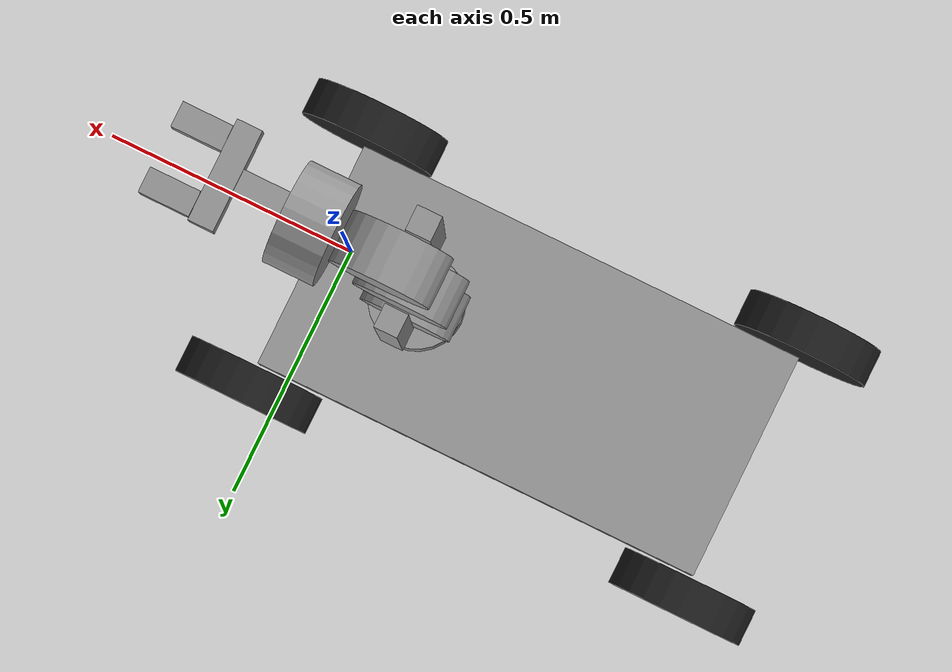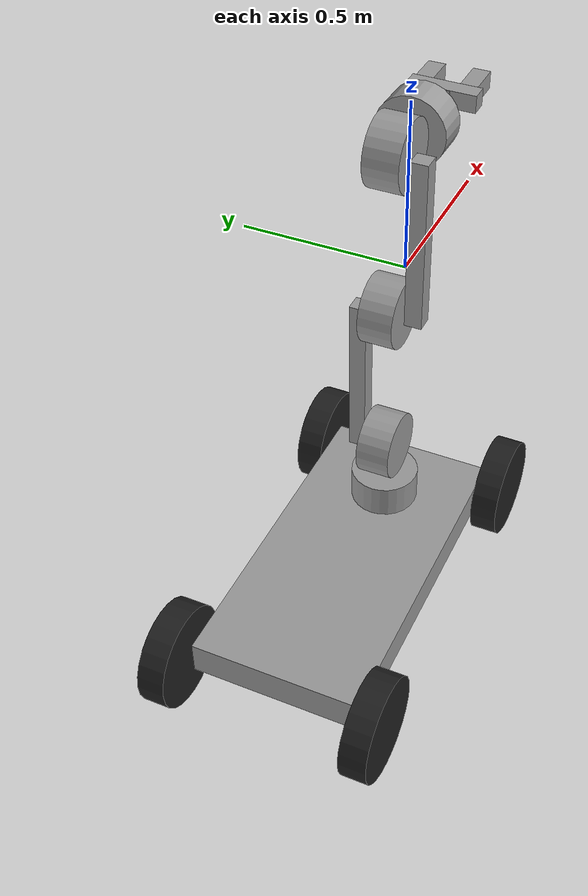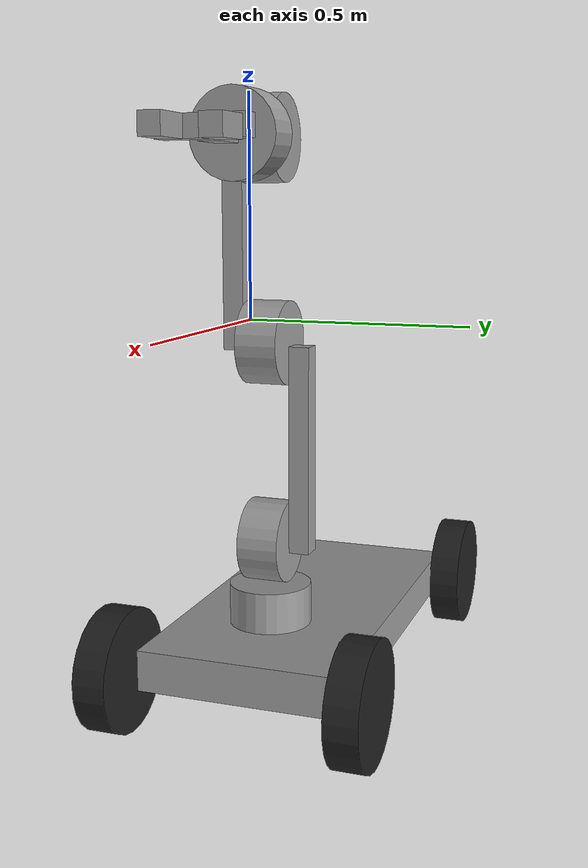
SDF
<?xml version='1.0'?>
<sdf version='1.7'>
  <model name='armOnCart'>
    <link name='link_0'>
      <inertial>
        <mass>1</mass>
        <inertia>
          <ixx>0.145833</ixx>
          <ixy>0</ixy>
          <ixz>0</ixz>
          <iyy>0.145833</iyy>
          <iyz>0</iyz>
          <izz>0.125</izz>
        </inertia>
        <pose>0 0 0 0 -0 0</pose>
      </inertial>
      <pose>-0.12157 -0.002688 -0.706599 0 -0 0</pose>
      <gravity>1</gravity>
      <self_collide>0</self_collide>
      <kinematic>0</kinematic>
      <enable_wind>0</enable_wind>
      <visual name='visual'>
        <pose>0 0 0 0 -0 0</pose>
        <geometry>
          <cylinder>
            <radius>0.1</radius>
            <length>0.1</length>
          </cylinder>
        </geometry>
        <material>
          <lighting>1</lighting>
          <script>
            <uri>file://media/materials/scripts/gazebo.material</uri>
            <name>Gazebo/Grey</name>
          </script>
          <shader type='pixel'>
            <normal_map>__default__</normal_map>
          </shader>
          <ambient>0.3 0.3 0.3 1</ambient>
          <diffuse>0.7 0.7 0.7 1</diffuse>
          <specular>0.01 0.01 0.01 1</specular>
          <emissive>0 0 0 1</emissive>
        </material>
        <transparency>0</transparency>
        <cast_shadows>1</cast_shadows>
      </visual>
      <collision name='collision'>
        <laser_retro>0</laser_retro>
        <max_contacts>10</max_contacts>
        <pose>0 0 0 0 -0 0</pose>
        <geometry>
          <cylinder>
            <radius>0.1</radius>
            <length>0.1</length>
          </cylinder>
        </geometry>
        <surface>
          <friction>
            <ode>
              <mu>1</mu>
              <mu2>1</mu2>
              <fdir1>0 0 0</fdir1>
              <slip1>0</slip1>
              <slip2>0</slip2>
            </ode>
            <torsional>
              <coefficient>1</coefficient>
              <patch_radius>0</patch_radius>
              <surface_radius>0</surface_radius>
              <use_patch_radius>1</use_patch_radius>
              <ode>
                <slip>0</slip>
              </ode>
            </torsional>
          </friction>
          <bounce>
            <restitution_coefficient>0</restitution_coefficient>
            <threshold>1e+06</threshold>
          </bounce>
          <contact>
            <collide_without_contact>0</collide_without_contact>
            <collide_without_contact_bitmask>1</collide_without_contact_bitmask>
            <collide_bitmask>1</collide_bitmask>
            <ode>
              <soft_cfm>0</soft_cfm>
              <soft_erp>0.2</soft_erp>
              <kp>1e+13</kp>
              <kd>1</kd>
              <max_vel>0.01</max_vel>
              <min_depth>0</min_depth>
            </ode>
            <bullet>
              <split_impulse>1</split_impulse>
              <split_impulse_penetration_threshold>-0.01</split_impulse_penetration_threshold>
              <soft_cfm>0</soft_cfm>
              <soft_erp>0.2</soft_erp>
              <kp>1e+13</kp>
              <kd>1</kd>
            </bullet>
          </contact>
        </surface>
      </collision>
    </link>
    <link name='link_10'>
      <inertial>
        <mass>1</mass>
        <inertia>
          <ixx>0.166667</ixx>
          <ixy>0</ixy>
          <ixz>0</ixz>
          <iyy>0.166667</iyy>
          <iyz>0</iyz>
          <izz>0.166667</izz>
        </inertia>
        <pose>0 0 0 0 -0 0</pose>
      </inertial>
      <pose>0.310485 0.066416 0.406986 0 -1.56253 0</pose>
      <gravity>1</gravity>
      <self_collide>0</self_collide>
      <kinematic>0</kinematic>
      <enable_wind>0</enable_wind>
      <visual name='visual'>
        <pose>0 0 0 0 -0 0</pose>
        <geometry>
          <box>
            <size>0.05 0.05 0.1</size>
          </box>
        </geometry>
        <material>
          <lighting>1</lighting>
          <script>
            <uri>file://media/materials/scripts/gazebo.material</uri>
            <name>Gazebo/Grey</name>
          </script>
          <shader type='pixel'>
            <normal_map>__default__</normal_map>
          </shader>
          <ambient>0.3 0.3 0.3 1</ambient>
          <diffuse>0.7 0.7 0.7 1</diffuse>
          <specular>0.01 0.01 0.01 1</specular>
          <emissive>0 0 0 1</emissive>
        </material>
        <transparency>0</transparency>
        <cast_shadows>1</cast_shadows>
      </visual>
      <collision name='collision'>
        <laser_retro>0</laser_retro>
        <max_contacts>10</max_contacts>
        <pose>0 0 0 0 -0 0</pose>
        <geometry>
          <box>
            <size>0.05 0.05 0.1</size>
          </box>
        </geometry>
        <surface>
          <friction>
            <ode>
              <mu>1</mu>
              <mu2>1</mu2>
              <fdir1>0 0 0</fdir1>
              <slip1>0</slip1>
              <slip2>0</slip2>
            </ode>
            <torsional>
              <coefficient>1</coefficient>
              <patch_radius>0</patch_radius>
              <surface_radius>0</surface_radius>
              <use_patch_radius>1</use_patch_radius>
              <ode>
                <slip>0</slip>
              </ode>
            </torsional>
          </friction>
          <bounce>
            <restitution_coefficient>0</restitution_coefficient>
            <threshold>1e+06</threshold>
          </bounce>
          <contact>
            <collide_without_contact>0</collide_without_contact>
            <collide_without_contact_bitmask>1</collide_without_contact_bitmask>
            <collide_bitmask>1</collide_bitmask>
            <ode>
              <soft_cfm>0</soft_cfm>
              <soft_erp>0.2</soft_erp>
              <kp>1e+13</kp>
              <kd>1</kd>
              <max_vel>0.01</max_vel>
              <min_depth>0</min_depth>
            </ode>
            <bullet>
              <split_impulse>1</split_impulse>
              <split_impulse_penetration_threshold>-0.01</split_impulse_penetration_threshold>
              <soft_cfm>0</soft_cfm>
              <soft_erp>0.2</soft_erp>
              <kp>1e+13</kp>
              <kd>1</kd>
            </bullet>
          </contact>
        </surface>
      </collision>
    </link>
    <link name='link_11'>
      <inertial>
        <mass>1</mass>
        <inertia>
          <ixx>0.166667</ixx>
          <ixy>0</ixy>
          <ixz>0</ixz>
          <iyy>0.166667</iyy>
          <iyz>0</iyz>
          <izz>0.166667</izz>
        </inertia>
        <pose>0 0 0 0 -0 0</pose>
      </inertial>
      <pose>0.309747 -0.063582 0.411085 0 1.56992 0</pose>
      <gravity>1</gravity>
      <self_collide>0</self_collide>
      <kinematic>0</kinematic>
      <enable_wind>0</enable_wind>
      <visual name='visual'>
        <pose>0 0 0 0 -0 0</pose>
        <geometry>
          <box>
            <size>0.05 0.05 0.1</size>
          </box>
        </geometry>
        <material>
          <lighting>1</lighting>
          <script>
            <uri>file://media/materials/scripts/gazebo.material</uri>
            <name>Gazebo/Grey</name>
          </script>
          <shader type='pixel'>
            <normal_map>__default__</normal_map>
          </shader>
          <ambient>0.3 0.3 0.3 1</ambient>
          <diffuse>0.7 0.7 0.7 1</diffuse>
          <specular>0.01 0.01 0.01 1</specular>
          <emissive>0 0 0 1</emissive>
        </material>
        <transparency>0</transparency>
        <cast_shadows>1</cast_shadows>
      </visual>
      <collision name='collision'>
        <laser_retro>0</laser_retro>
        <max_contacts>10</max_contacts>
        <pose>0 0 0 0 -0 0</pose>
        <geometry>
          <box>
            <size>0.05 0.05 0.1</size>
          </box>
        </geometry>
        <surface>
          <friction>
            <ode>
              <mu>1</mu>
              <mu2>1</mu2>
              <fdir1>0 0 0</fdir1>
              <slip1>0</slip1>
              <slip2>0</slip2>
            </ode>
            <torsional>
              <coefficient>1</coefficient>
              <patch_radius>0</patch_radius>
              <surface_radius>0</surface_radius>
              <use_patch_radius>1</use_patch_radius>
              <ode>
                <slip>0</slip>
              </ode>
            </torsional>
          </friction>
          <bounce>
            <restitution_coefficient>0</restitution_coefficient>
            <threshold>1e+06</threshold>
          </bounce>
          <contact>
            <collide_without_contact>0</collide_without_contact>
            <collide_without_contact_bitmask>1</collide_without_contact_bitmask>
            <collide_bitmask>1</collide_bitmask>
            <ode>
              <soft_cfm>0</soft_cfm>
              <soft_erp>0.2</soft_erp>
              <kp>1e+13</kp>
              <kd>1</kd>
              <max_vel>0.01</max_vel>
              <min_depth>0</min_depth>
            </ode>
            <bullet>
              <split_impulse>1</split_impulse>
              <split_impulse_penetration_threshold>-0.01</split_impulse_penetration_threshold>
              <soft_cfm>0</soft_cfm>
              <soft_erp>0.2</soft_erp>
              <kp>1e+13</kp>
              <kd>1</kd>
            </bullet>
          </contact>
        </surface>
      </collision>
    </link>
    <link name='link_2'>
      <inertial>
        <mass>1</mass>
        <inertia>
          <ixx>0.145833</ixx>
          <ixy>0</ixy>
          <ixz>0</ixz>
          <iyy>0.145833</iyy>
          <iyz>0</iyz>
          <izz>0.125</izz>
        </inertia>
        <pose>0 0 0 0 -0 0</pose>
      </inertial>
      <pose>-0.122164 -0.000569 -0.548263 -1.57465 0 0</pose>
      <gravity>1</gravity>
      <self_collide>0</self_collide>
      <kinematic>0</kinematic>
      <enable_wind>0</enable_wind>
      <visual name='visual'>
        <pose>0 0 0 0 -0 0</pose>
        <geometry>
          <cylinder>
            <radius>0.1</radius>
            <length>0.1</length>
          </cylinder>
        </geometry>
        <material>
          <lighting>1</lighting>
          <script>
            <uri>file://media/materials/scripts/gazebo.material</uri>
            <name>Gazebo/Grey</name>
          </script>
          <shader type='pixel'>
            <normal_map>__default__</normal_map>
          </shader>
          <ambient>0.3 0.3 0.3 1</ambient>
          <diffuse>0.7 0.7 0.7 1</diffuse>
          <specular>0.01 0.01 0.01 1</specular>
          <emissive>0 0 0 1</emissive>
        </material>
        <transparency>0</transparency>
        <cast_shadows>1</cast_shadows>
      </visual>
      <collision name='collision'>
        <laser_retro>0</laser_retro>
        <max_contacts>10</max_contacts>
        <pose>0 0 0 0 -0 0</pose>
        <geometry>
          <cylinder>
            <radius>0.1</radius>
            <length>0.1</length>
          </cylinder>
        </geometry>
        <surface>
          <friction>
            <ode>
              <mu>1</mu>
              <mu2>1</mu2>
              <fdir1>0 0 0</fdir1>
              <slip1>0</slip1>
              <slip2>0</slip2>
            </ode>
            <torsional>
              <coefficient>1</coefficient>
              <patch_radius>0</patch_radius>
              <surface_radius>0</surface_radius>
              <use_patch_radius>1</use_patch_radius>
              <ode>
                <slip>0</slip>
              </ode>
            </torsional>
          </friction>
          <bounce>
            <restitution_coefficient>0</restitution_coefficient>
            <threshold>1e+06</threshold>
          </bounce>
          <contact>
            <collide_without_contact>0</collide_without_contact>
            <collide_without_contact_bitmask>1</collide_without_contact_bitmask>
            <collide_bitmask>1</collide_bitmask>
            <ode>
              <soft_cfm>0</soft_cfm>
              <soft_erp>0.2</soft_erp>
              <kp>1e+13</kp>
              <kd>1</kd>
              <max_vel>0.01</max_vel>
              <min_depth>0</min_depth>
            </ode>
            <bullet>
              <split_impulse>1</split_impulse>
              <split_impulse_penetration_threshold>-0.01</split_impulse_penetration_threshold>
              <soft_cfm>0</soft_cfm>
              <soft_erp>0.2</soft_erp>
              <kp>1e+13</kp>
              <kd>1</kd>
            </bullet>
          </contact>
        </surface>
      </collision>
    </link>
    <link name='link_3'>
      <inertial>
        <mass>1</mass>
        <inertia>
          <ixx>0.166667</ixx>
          <ixy>0</ixy>
          <ixz>0</ixz>
          <iyy>0.166667</iyy>
          <iyz>0</iyz>
          <izz>0.166667</izz>
        </inertia>
        <pose>0 0 0 0 -0 0</pose>
      </inertial>
      <pose>-0.120271 0.080266 -0.320372 0 -0 0</pose>
      <gravity>1</gravity>
      <self_collide>0</self_collide>
      <kinematic>0</kinematic>
      <enable_wind>0</enable_wind>
      <visual name='visual'>
        <pose>0 0 0 0 -0 0</pose>
        <geometry>
          <box>
            <size>0.05 0.05 0.5</size>
          </box>
        </geometry>
        <material>
          <lighting>1</lighting>
          <script>
            <uri>file://media/materials/scripts/gazebo.material</uri>
            <name>Gazebo/Grey</name>
          </script>
          <shader type='pixel'>
            <normal_map>__default__</normal_map>
          </shader>
          <ambient>0.3 0.3 0.3 1</ambient>
          <diffuse>0.7 0.7 0.7 1</diffuse>
          <specular>0.01 0.01 0.01 1</specular>
          <emissive>0 0 0 1</emissive>
        </material>
        <transparency>0</transparency>
        <cast_shadows>1</cast_shadows>
      </visual>
      <collision name='collision'>
        <laser_retro>0</laser_retro>
        <max_contacts>10</max_contacts>
        <pose>0 0 0 0 -0 0</pose>
        <geometry>
          <box>
            <size>0.05 0.05 0.5</size>
          </box>
        </geometry>
        <surface>
          <friction>
            <ode>
              <mu>1</mu>
              <mu2>1</mu2>
              <fdir1>0 0 0</fdir1>
              <slip1>0</slip1>
              <slip2>0</slip2>
            </ode>
            <torsional>
              <coefficient>1</coefficient>
              <patch_radius>0</patch_radius>
              <surface_radius>0</surface_radius>
              <use_patch_radius>1</use_patch_radius>
              <ode>
                <slip>0</slip>
              </ode>
            </torsional>
          </friction>
          <bounce>
            <restitution_coefficient>0</restitution_coefficient>
            <threshold>1e+06</threshold>
          </bounce>
          <contact>
            <collide_without_contact>0</collide_without_contact>
            <collide_without_contact_bitmask>1</collide_without_contact_bitmask>
            <collide_bitmask>1</collide_bitmask>
            <ode>
              <soft_cfm>0</soft_cfm>
              <soft_erp>0.2</soft_erp>
              <kp>1e+13</kp>
              <kd>1</kd>
              <max_vel>0.01</max_vel>
              <min_depth>0</min_depth>
            </ode>
            <bullet>
              <split_impulse>1</split_impulse>
              <split_impulse_penetration_threshold>-0.01</split_impulse_penetration_threshold>
              <soft_cfm>0</soft_cfm>
              <soft_erp>0.2</soft_erp>
              <kp>1e+13</kp>
              <kd>1</kd>
            </bullet>
          </contact>
        </surface>
      </collision>
    </link>
    <link name='link_4'>
      <inertial>
        <mass>1</mass>
        <inertia>
          <ixx>0.145833</ixx>
          <ixy>0</ixy>
          <ixz>0</ixz>
          <iyy>0.145833</iyy>
          <iyz>0</iyz>
          <izz>0.125</izz>
        </inertia>
        <pose>0 0 0 0 -0 0</pose>
      </inertial>
      <pose>-0.122473 -0.001037 -0.063899 1.56786 -0 0</pose>
      <gravity>1</gravity>
      <self_collide>0</self_collide>
      <kinematic>0</kinematic>
      <enable_wind>0</enable_wind>
      <visual name='visual'>
        <pose>0 0 0 0 -0 0</pose>
        <geometry>
          <cylinder>
            <radius>0.1</radius>
            <length>0.1</length>
          </cylinder>
        </geometry>
        <material>
          <lighting>1</lighting>
          <script>
            <uri>file://media/materials/scripts/gazebo.material</uri>
            <name>Gazebo/Grey</name>
          </script>
          <shader type='pixel'>
            <normal_map>__default__</normal_map>
          </shader>
          <ambient>0.3 0.3 0.3 1</ambient>
          <diffuse>0.7 0.7 0.7 1</diffuse>
          <specular>0.01 0.01 0.01 1</specular>
          <emissive>0 0 0 1</emissive>
        </material>
        <transparency>0</transparency>
        <cast_shadows>1</cast_shadows>
      </visual>
      <collision name='collision'>
        <laser_retro>0</laser_retro>
        <max_contacts>10</max_contacts>
        <pose>0 0 0 0 -0 0</pose>
        <geometry>
          <cylinder>
            <radius>0.1</radius>
            <length>0.1</length>
          </cylinder>
        </geometry>
        <surface>
          <friction>
            <ode>
              <mu>1</mu>
              <mu2>1</mu2>
              <fdir1>0 0 0</fdir1>
              <slip1>0</slip1>
              <slip2>0</slip2>
            </ode>
            <torsional>
              <coefficient>1</coefficient>
              <patch_radius>0</patch_radius>
              <surface_radius>0</surface_radius>
              <use_patch_radius>1</use_patch_radius>
              <ode>
                <slip>0</slip>
              </ode>
            </torsional>
          </friction>
          <bounce>
            <restitution_coefficient>0</restitution_coefficient>
            <threshold>1e+06</threshold>
          </bounce>
          <contact>
            <collide_without_contact>0</collide_without_contact>
            <collide_without_contact_bitmask>1</collide_without_contact_bitmask>
            <collide_bitmask>1</collide_bitmask>
            <ode>
              <soft_cfm>0</soft_cfm>
              <soft_erp>0.2</soft_erp>
              <kp>1e+13</kp>
              <kd>1</kd>
              <max_vel>0.01</max_vel>
              <min_depth>0</min_depth>
            </ode>
            <bullet>
              <split_impulse>1</split_impulse>
              <split_impulse_penetration_threshold>-0.01</split_impulse_penetration_threshold>
              <soft_cfm>0</soft_cfm>
              <soft_erp>0.2</soft_erp>
              <kp>1e+13</kp>
              <kd>1</kd>
            </bullet>
          </contact>
        </surface>
      </collision>
    </link>
    <link name='link_5'>
      <inertial>
        <mass>1</mass>
        <inertia>
          <ixx>0.166667</ixx>
          <ixy>0</ixy>
          <ixz>0</ixz>
          <iyy>0.166667</iyy>
          <iyz>0</iyz>
          <izz>0.166667</izz>
        </inertia>
        <pose>0 0 0 0 -0 0</pose>
      </inertial>
      <pose>-0.119231 -0.082351 0.166863 0 -0 0</pose>
      <gravity>1</gravity>
      <self_collide>0</self_collide>
      <kinematic>0</kinematic>
      <enable_wind>0</enable_wind>
      <visual name='visual'>
        <pose>0 0 0 0 -0 0</pose>
        <geometry>
          <box>
            <size>0.05 0.05 0.5</size>
          </box>
        </geometry>
        <material>
          <lighting>1</lighting>
          <script>
            <uri>file://media/materials/scripts/gazebo.material</uri>
            <name>Gazebo/Grey</name>
          </script>
          <shader type='pixel'>
            <normal_map>__default__</normal_map>
          </shader>
          <ambient>0.3 0.3 0.3 1</ambient>
          <diffuse>0.7 0.7 0.7 1</diffuse>
          <specular>0.01 0.01 0.01 1</specular>
          <emissive>0 0 0 1</emissive>
        </material>
        <transparency>0</transparency>
        <cast_shadows>1</cast_shadows>
      </visual>
      <collision name='collision'>
        <laser_retro>0</laser_retro>
        <max_contacts>10</max_contacts>
        <pose>0 0 0 0 -0 0</pose>
        <geometry>
          <box>
            <size>0.05 0.05 0.5</size>
          </box>
        </geometry>
        <surface>
          <friction>
            <ode>
              <mu>1</mu>
              <mu2>1</mu2>
              <fdir1>0 0 0</fdir1>
              <slip1>0</slip1>
              <slip2>0</slip2>
            </ode>
            <torsional>
              <coefficient>1</coefficient>
              <patch_radius>0</patch_radius>
              <surface_radius>0</surface_radius>
              <use_patch_radius>1</use_patch_radius>
              <ode>
                <slip>0</slip>
              </ode>
            </torsional>
          </friction>
          <bounce>
            <restitution_coefficient>0</restitution_coefficient>
            <threshold>1e+06</threshold>
          </bounce>
          <contact>
            <collide_without_contact>0</collide_without_contact>
            <collide_without_contact_bitmask>1</collide_without_contact_bitmask>
            <collide_bitmask>1</collide_bitmask>
            <ode>
              <soft_cfm>0</soft_cfm>
              <soft_erp>0.2</soft_erp>
              <kp>1e+13</kp>
              <kd>1</kd>
              <max_vel>0.01</max_vel>
              <min_depth>0</min_depth>
            </ode>
            <bullet>
              <split_impulse>1</split_impulse>
              <split_impulse_penetration_threshold>-0.01</split_impulse_penetration_threshold>
              <soft_cfm>0</soft_cfm>
              <soft_erp>0.2</soft_erp>
              <kp>1e+13</kp>
              <kd>1</kd>
            </bullet>
          </contact>
        </surface>
      </collision>
    </link>
    <link name='link_6'>
      <inertial>
        <mass>1</mass>
        <inertia>
          <ixx>0.145833</ixx>
          <ixy>0</ixy>
          <ixz>0</ixz>
          <iyy>0.145833</iyy>
          <iyz>0</iyz>
          <izz>0.125</izz>
        </inertia>
        <pose>0 0 0 0 -0 0</pose>
      </inertial>
      <pose>-0.095091 0.001654 0.4052 -1.56692 0 0</pose>
      <gravity>1</gravity>
      <self_collide>0</self_collide>
      <kinematic>0</kinematic>
      <enable_wind>0</enable_wind>
      <visual name='visual'>
        <pose>0 0 0 0 -0 0</pose>
        <geometry>
          <cylinder>
            <radius>0.1</radius>
            <length>0.1</length>
          </cylinder>
        </geometry>
        <material>
          <lighting>1</lighting>
          <script>
            <uri>file://media/materials/scripts/gazebo.material</uri>
            <name>Gazebo/Grey</name>
          </script>
          <shader type='pixel'>
            <normal_map>__default__</normal_map>
          </shader>
          <ambient>0.3 0.3 0.3 1</ambient>
          <diffuse>0.7 0.7 0.7 1</diffuse>
          <specular>0.01 0.01 0.01 1</specular>
          <emissive>0 0 0 1</emissive>
        </material>
        <transparency>0</transparency>
        <cast_shadows>1</cast_shadows>
      </visual>
      <collision name='collision'>
        <laser_retro>0</laser_retro>
        <max_contacts>10</max_contacts>
        <pose>0 0 0 0 -0 0</pose>
        <geometry>
          <cylinder>
            <radius>0.1</radius>
            <length>0.1</length>
          </cylinder>
        </geometry>
        <surface>
          <friction>
            <ode>
              <mu>1</mu>
              <mu2>1</mu2>
              <fdir1>0 0 0</fdir1>
              <slip1>0</slip1>
              <slip2>0</slip2>
            </ode>
            <torsional>
              <coefficient>1</coefficient>
              <patch_radius>0</patch_radius>
              <surface_radius>0</surface_radius>
              <use_patch_radius>1</use_patch_radius>
              <ode>
                <slip>0</slip>
              </ode>
            </torsional>
          </friction>
          <bounce>
            <restitution_coefficient>0</restitution_coefficient>
            <threshold>1e+06</threshold>
          </bounce>
          <contact>
            <collide_without_contact>0</collide_without_contact>
            <collide_without_contact_bitmask>1</collide_without_contact_bitmask>
            <collide_bitmask>1</collide_bitmask>
            <ode>
              <soft_cfm>0</soft_cfm>
              <soft_erp>0.2</soft_erp>
              <kp>1e+13</kp>
              <kd>1</kd>
              <max_vel>0.01</max_vel>
              <min_depth>0</min_depth>
            </ode>
            <bullet>
              <split_impulse>1</split_impulse>
              <split_impulse_penetration_threshold>-0.01</split_impulse_penetration_threshold>
              <soft_cfm>0</soft_cfm>
              <soft_erp>0.2</soft_erp>
              <kp>1e+13</kp>
              <kd>1</kd>
            </bullet>
          </contact>
        </surface>
      </collision>
    </link>
    <link name='link_7'>
      <inertial>
        <mass>1</mass>
        <inertia>
          <ixx>0.145833</ixx>
          <ixy>0</ixy>
          <ixz>0</ixz>
          <iyy>0.145833</iyy>
          <iyz>0</iyz>
          <izz>0.125</izz>
        </inertia>
        <pose>0 0 0 0 -0 0</pose>
      </inertial>
      <pose>0.059547 0.004541 0.405559 3.14159 1.55532 3.14159</pose>
      <gravity>1</gravity>
      <self_collide>0</self_collide>
      <kinematic>0</kinematic>
      <enable_wind>0</enable_wind>
      <visual name='visual'>
        <pose>0 0 0 0 -0 0</pose>
        <geometry>
          <cylinder>
            <radius>0.1</radius>
            <length>0.1</length>
          </cylinder>
        </geometry>
        <material>
          <lighting>1</lighting>
          <script>
            <uri>file://media/materials/scripts/gazebo.material</uri>
            <name>Gazebo/Grey</name>
          </script>
          <shader type='pixel'>
            <normal_map>__default__</normal_map>
          </shader>
          <ambient>0.3 0.3 0.3 1</ambient>
          <diffuse>0.7 0.7 0.7 1</diffuse>
          <specular>0.01 0.01 0.01 1</specular>
          <emissive>0 0 0 1</emissive>
        </material>
        <transparency>0</transparency>
        <cast_shadows>1</cast_shadows>
      </visual>
      <collision name='collision'>
        <laser_retro>0</laser_retro>
        <max_contacts>10</max_contacts>
        <pose>0 0 0 0 -0 0</pose>
        <geometry>
          <cylinder>
            <radius>0.1</radius>
            <length>0.1</length>
          </cylinder>
        </geometry>
        <surface>
          <friction>
            <ode>
              <mu>1</mu>
              <mu2>1</mu2>
              <fdir1>0 0 0</fdir1>
              <slip1>0</slip1>
              <slip2>0</slip2>
            </ode>
            <torsional>
              <coefficient>1</coefficient>
              <patch_radius>0</patch_radius>
              <surface_radius>0</surface_radius>
              <use_patch_radius>1</use_patch_radius>
              <ode>
                <slip>0</slip>
              </ode>
            </torsional>
          </friction>
          <bounce>
            <restitution_coefficient>0</restitution_coefficient>
            <threshold>1e+06</threshold>
          </bounce>
          <contact>
            <collide_without_contact>0</collide_without_contact>
            <collide_without_contact_bitmask>1</collide_without_contact_bitmask>
            <collide_bitmask>1</collide_bitmask>
            <ode>
              <soft_cfm>0</soft_cfm>
              <soft_erp>0.2</soft_erp>
              <kp>1e+13</kp>
              <kd>1</kd>
              <max_vel>0.01</max_vel>
              <min_depth>0</min_depth>
            </ode>
            <bullet>
              <split_impulse>1</split_impulse>
              <split_impulse_penetration_threshold>-0.01</split_impulse_penetration_threshold>
              <soft_cfm>0</soft_cfm>
              <soft_erp>0.2</soft_erp>
              <kp>1e+13</kp>
              <kd>1</kd>
            </bullet>
          </contact>
        </surface>
      </collision>
    </link>
    <link name='link_8'>
      <inertial>
        <mass>1</mass>
        <inertia>
          <ixx>0.166667</ixx>
          <ixy>0</ixy>
          <ixz>0</ixz>
          <iyy>0.166667</iyy>
          <iyz>0</iyz>
          <izz>0.166667</izz>
        </inertia>
        <pose>0 0 0 0 -0 0</pose>
      </inertial>
      <pose>0.165286 -0.002229 0.40885 -3.14159 1.56883 -3.14159</pose>
      <gravity>1</gravity>
      <self_collide>0</self_collide>
      <kinematic>0</kinematic>
      <enable_wind>0</enable_wind>
      <visual name='visual'>
        <pose>0 0 0 0 -0 0</pose>
        <geometry>
          <box>
            <size>0.05 0.05 0.1</size>
          </box>
        </geometry>
        <material>
          <lighting>1</lighting>
          <script>
            <uri>file://media/materials/scripts/gazebo.material</uri>
            <name>Gazebo/Grey</name>
          </script>
          <shader type='pixel'>
            <normal_map>__default__</normal_map>
          </shader>
          <ambient>0.3 0.3 0.3 1</ambient>
          <diffuse>0.7 0.7 0.7 1</diffuse>
          <specular>0.01 0.01 0.01 1</specular>
          <emissive>0 0 0 1</emissive>
        </material>
        <transparency>0</transparency>
        <cast_shadows>1</cast_shadows>
      </visual>
      <collision name='collision'>
        <laser_retro>0</laser_retro>
        <max_contacts>10</max_contacts>
        <pose>0 0 0 0 -0 0</pose>
        <geometry>
          <box>
            <size>0.05 0.05 0.1</size>
          </box>
        </geometry>
        <surface>
          <friction>
            <ode>
              <mu>1</mu>
              <mu2>1</mu2>
              <fdir1>0 0 0</fdir1>
              <slip1>0</slip1>
              <slip2>0</slip2>
            </ode>
            <torsional>
              <coefficient>1</coefficient>
              <patch_radius>0</patch_radius>
              <surface_radius>0</surface_radius>
              <use_patch_radius>1</use_patch_radius>
              <ode>
                <slip>0</slip>
              </ode>
            </torsional>
          </friction>
          <bounce>
            <restitution_coefficient>0</restitution_coefficient>
            <threshold>1e+06</threshold>
          </bounce>
          <contact>
            <collide_without_contact>0</collide_without_contact>
            <collide_without_contact_bitmask>1</collide_without_contact_bitmask>
            <collide_bitmask>1</collide_bitmask>
            <ode>
              <soft_cfm>0</soft_cfm>
              <soft_erp>0.2</soft_erp>
              <kp>1e+13</kp>
              <kd>1</kd>
              <max_vel>0.01</max_vel>
              <min_depth>0</min_depth>
            </ode>
            <bullet>
              <split_impulse>1</split_impulse>
              <split_impulse_penetration_threshold>-0.01</split_impulse_penetration_threshold>
              <soft_cfm>0</soft_cfm>
              <soft_erp>0.2</soft_erp>
              <kp>1e+13</kp>
              <kd>1</kd>
            </bullet>
          </contact>
        </surface>
      </collision>
    </link>
    <link name='link_9'>
      <inertial>
        <mass>1</mass>
        <inertia>
          <ixx>0.166667</ixx>
          <ixy>0</ixy>
          <ixz>0</ixz>
          <iyy>0.166667</iyy>
          <iyz>0</iyz>
          <izz>0.166667</izz>
        </inertia>
        <pose>0 0 0 0 -0 0</pose>
      </inertial>
      <pose>0.234267 -0.002636 0.411917 -1.56148 0 0</pose>
      <gravity>1</gravity>
      <self_collide>0</self_collide>
      <kinematic>0</kinematic>
      <enable_wind>0</enable_wind>
      <visual name='visual'>
        <pose>0 0 0 0 -0 0</pose>
        <geometry>
          <box>
            <size>0.05 0.05 0.2</size>
          </box>
        </geometry>
        <material>
          <lighting>1</lighting>
          <script>
            <uri>file://media/materials/scripts/gazebo.material</uri>
            <name>Gazebo/Grey</name>
          </script>
          <shader type='pixel'>
            <normal_map>__default__</normal_map>
          </shader>
          <ambient>0.3 0.3 0.3 1</ambient>
          <diffuse>0.7 0.7 0.7 1</diffuse>
          <specular>0.01 0.01 0.01 1</specular>
          <emissive>0 0 0 1</emissive>
        </material>
        <transparency>0</transparency>
        <cast_shadows>1</cast_shadows>
      </visual>
      <collision name='collision'>
        <laser_retro>0</laser_retro>
        <max_contacts>10</max_contacts>
        <pose>0 0 0 0 -0 0</pose>
        <geometry>
          <box>
            <size>0.05 0.05 0.2</size>
          </box>
        </geometry>
        <surface>
          <friction>
            <ode>
              <mu>1</mu>
              <mu2>1</mu2>
              <fdir1>0 0 0</fdir1>
              <slip1>0</slip1>
              <slip2>0</slip2>
            </ode>
            <torsional>
              <coefficient>1</coefficient>
              <patch_radius>0</patch_radius>
              <surface_radius>0</surface_radius>
              <use_patch_radius>1</use_patch_radius>
              <ode>
                <slip>0</slip>
              </ode>
            </torsional>
          </friction>
          <bounce>
            <restitution_coefficient>0</restitution_coefficient>
            <threshold>1e+06</threshold>
          </bounce>
          <contact>
            <collide_without_contact>0</collide_without_contact>
            <collide_without_contact_bitmask>1</collide_without_contact_bitmask>
            <collide_bitmask>1</collide_bitmask>
            <ode>
              <soft_cfm>0</soft_cfm>
              <soft_erp>0.2</soft_erp>
              <kp>1e+13</kp>
              <kd>1</kd>
              <max_vel>0.01</max_vel>
              <min_depth>0</min_depth>
            </ode>
            <bullet>
              <split_impulse>1</split_impulse>
              <split_impulse_penetration_threshold>-0.01</split_impulse_penetration_threshold>
              <soft_cfm>0</soft_cfm>
              <soft_erp>0.2</soft_erp>
              <kp>1e+13</kp>
              <kd>1</kd>
            </bullet>
          </contact>
        </surface>
      </collision>
    </link>
    <model name='cart_front_steer'>
      <link name='chassis'>
        <pose>0 0 0.15 0 -0 0</pose>
        <inertial>
          <pose>0.1 0 0 0 -0 0</pose>
          <mass>10</mass>
          <inertia>
            <ixx>0.216667</ixx>
            <iyy>0.841667</iyy>
            <izz>1.04167</izz>
            <ixy>0</ixy>
            <ixz>0</ixz>
            <iyz>0</iyz>
          </inertia>
        </inertial>
        <collision name='collision'>
          <geometry>
            <box>
              <size>1 0.5 0.1</size>
            </box>
          </geometry>
        </collision>
        <visual name='visual'>
          <geometry>
            <box>
              <size>1 0.5 0.1</size>
            </box>
          </geometry>
          <material>
            <script>
              <uri>file://media/materials/scripts/gazebo.material</uri>
              <name>Gazebo/Grey</name>
            </script>
          </material>
        </visual>
      </link>
      <link name='wheel_front_left'>
        <pose>0.5 0.298 0.15 -1.5708 -0.087266 0</pose>
        <inertial>
          <mass>0.5</mass>
          <inertia>
            <ixx>0.00307917</ixx>
            <iyy>0.00307917</iyy>
            <izz>0.005625</izz>
            <ixy>0</ixy>
            <ixz>0</ixz>
            <iyz>0</iyz>
          </inertia>
        </inertial>
        <collision name='collision'>
          <geometry>
            <cylinder>
              <radius>0.15</radius>
              <length>0.08</length>
            </cylinder>
          </geometry>
        </collision>
        <visual name='visual'>
          <geometry>
            <cylinder>
              <radius>0.15</radius>
              <length>0.08</length>
            </cylinder>
          </geometry>
          <material>
            <script>
              <uri>file://media/materials/scripts/gazebo.material</uri>
              <name>Gazebo/Black</name>
            </script>
          </material>
        </visual>
      </link>
      <joint name='wheel_front_left_steer_spin' type='universal'>
        <parent>chassis</parent>
        <child>wheel_front_left</child>
        <axis>
          <xyz>0 -1 0</xyz>
          <limit>
            <lower>-0.610865</lower>
            <upper>0.610865</upper>
          </limit>
        </axis>
        <axis2>
          <xyz>0 0 1</xyz>
          <limit/>
        </axis2>
      </joint>
      <link name='wheel_front_right'>
        <pose>0.5 -0.298 0.15 -1.5708 -0.087266 0</pose>
        <inertial>
          <mass>0.5</mass>
          <inertia>
            <ixx>0.00307917</ixx>
            <iyy>0.00307917</iyy>
            <izz>0.005625</izz>
            <ixy>0</ixy>
            <ixz>0</ixz>
            <iyz>0</iyz>
          </inertia>
        </inertial>
        <collision name='collision'>
          <geometry>
            <cylinder>
              <radius>0.15</radius>
              <length>0.08</length>
            </cylinder>
          </geometry>
        </collision>
        <visual name='visual'>
          <geometry>
            <cylinder>
              <radius>0.15</radius>
              <length>0.08</length>
            </cylinder>
          </geometry>
          <material>
            <script>
              <uri>file://media/materials/scripts/gazebo.material</uri>
              <name>Gazebo/Black</name>
            </script>
          </material>
        </visual>
      </link>
      <joint name='wheel_front_right_steer_spin' type='universal'>
        <parent>chassis</parent>
        <child>wheel_front_right</child>
        <axis>
          <xyz>0 -1 0</xyz>
          <limit>
            <lower>-0.610865</lower>
            <upper>0.610865</upper>
          </limit>
        </axis>
        <axis2>
          <xyz>0 0 1</xyz>
          <limit/>
        </axis2>
      </joint>
      <link name='wheel_rear_left'>
        <pose>-0.5 0.298 0.15 -1.5708 0 0</pose>
        <inertial>
          <mass>0.5</mass>
          <inertia>
            <ixx>0.00307917</ixx>
            <iyy>0.00307917</iyy>
            <izz>0.005625</izz>
            <ixy>0</ixy>
            <ixz>0</ixz>
            <iyz>0</iyz>
          </inertia>
        </inertial>
        <collision name='collision'>
          <geometry>
            <cylinder>
              <radius>0.15</radius>
              <length>0.08</length>
            </cylinder>
          </geometry>
        </collision>
        <visual name='visual'>
          <geometry>
            <cylinder>
              <radius>0.15</radius>
              <length>0.08</length>
            </cylinder>
          </geometry>
          <material>
            <script>
              <uri>file://media/materials/scripts/gazebo.material</uri>
              <name>Gazebo/Black</name>
            </script>
          </material>
        </visual>
      </link>
      <joint name='wheel_rear_left_spin' type='revolute'>
        <parent>chassis</parent>
        <child>wheel_rear_left</child>
        <axis>
          <xyz>0 0 1</xyz>
          <limit>
            <lower>-1e+16</lower>
            <upper>1e+16</upper>
          </limit>
        </axis>
      </joint>
      <link name='wheel_rear_right'>
        <pose>-0.5 -0.298 0.15 -1.5708 0 0</pose>
        <inertial>
          <mass>0.5</mass>
          <inertia>
            <ixx>0.00307917</ixx>
            <iyy>0.00307917</iyy>
            <izz>0.005625</izz>
            <ixy>0</ixy>
            <ixz>0</ixz>
            <iyz>0</iyz>
          </inertia>
        </inertial>
        <collision name='collision'>
          <geometry>
            <cylinder>
              <radius>0.15</radius>
              <length>0.08</length>
            </cylinder>
          </geometry>
        </collision>
        <visual name='visual'>
          <geometry>
            <cylinder>
              <radius>0.15</radius>
              <length>0.08</length>
            </cylinder>
          </geometry>
          <material>
            <script>
              <uri>file://media/materials/scripts/gazebo.material</uri>
              <name>Gazebo/Black</name>
            </script>
          </material>
        </visual>
      </link>
      <joint name='wheel_rear_right_spin' type='revolute'>
        <parent>chassis</parent>
        <child>wheel_rear_right</child>
        <axis>
          <xyz>0 0 1</xyz>
          <limit>
            <lower>-1e+16</lower>
            <upper>1e+16</upper>
          </limit>
        </axis>
      </joint>
      <pose>-0.378531 0.002213 -0.977321 0 -0 0</pose>
    </model>
    <joint name='chassis_JOINT_0' type='revolute'>
      <parent>cart_front_steer::chassis</parent>
      <child>link_0</child>
      <pose>0 0 0 0 -0 0</pose>
      <axis>
        <xyz>0 0 1</xyz>
        <limit>
          <lower>-1.79769e+308</lower>
          <upper>1.79769e+308</upper>
          <effort>-1</effort>
          <velocity>-1</velocity>
        </limit>
        <dynamics>
          <spring_reference>0</spring_reference>
          <spring_stiffness>0</spring_stiffness>
          <damping>0</damping>
        </dynamics>
      </axis>
      <physics>
        <ode>
          <limit>
            <cfm>0</cfm>
            <erp>0.2</erp>
          </limit>
          <suspension>
            <cfm>0</cfm>
            <erp>0.2</erp>
          </suspension>
        </ode>
      </physics>
    </joint>
    <joint name='link_0_JOINT_1' type='revolute'>
      <parent>link_0</parent>
      <child>link_2</child>
      <pose>0 0 0 0 -0 0</pose>
      <axis>
        <xyz>0 0 1</xyz>
        <limit>
          <lower>-1.79769e+308</lower>
          <upper>1.79769e+308</upper>
          <effort>-1</effort>
          <velocity>-1</velocity>
        </limit>
        <dynamics>
          <spring_reference>0</spring_reference>
          <spring_stiffness>0</spring_stiffness>
          <damping>0</damping>
        </dynamics>
      </axis>
      <physics>
        <ode>
          <limit>
            <cfm>0</cfm>
            <erp>0.2</erp>
          </limit>
          <suspension>
            <cfm>0</cfm>
            <erp>0.2</erp>
          </suspension>
        </ode>
      </physics>
    </joint>
    <joint name='link_2_JOINT_2' type='fixed'>
      <parent>link_2</parent>
      <child>link_3</child>
      <pose>0 0 0 0 -0 0</pose>
      <physics>
        <ode>
          <limit>
            <cfm>0</cfm>
            <erp>0.2</erp>
          </limit>
          <suspension>
            <cfm>0</cfm>
            <erp>0.2</erp>
          </suspension>
        </ode>
      </physics>
    </joint>
    <joint name='link_3_JOINT_3' type='revolute'>
      <parent>link_3</parent>
      <child>link_4</child>
      <pose>0 0 0 0 -0 0</pose>
      <axis>
        <xyz>0 0 1</xyz>
        <limit>
          <lower>-1.79769e+308</lower>
          <upper>1.79769e+308</upper>
          <effort>-1</effort>
          <velocity>-1</velocity>
        </limit>
        <dynamics>
          <spring_reference>0</spring_reference>
          <spring_stiffness>0</spring_stiffness>
          <damping>0</damping>
        </dynamics>
      </axis>
      <physics>
        <ode>
          <limit>
            <cfm>0</cfm>
            <erp>0.2</erp>
          </limit>
          <suspension>
            <cfm>0</cfm>
            <erp>0.2</erp>
          </suspension>
        </ode>
      </physics>
    </joint>
    <joint name='link_4_JOINT_4' type='fixed'>
      <parent>link_4</parent>
      <child>link_5</child>
      <pose>0 0 0 0 -0 0</pose>
      <physics>
        <ode>
          <limit>
            <cfm>0</cfm>
            <erp>0.2</erp>
          </limit>
          <suspension>
            <cfm>0</cfm>
            <erp>0.2</erp>
          </suspension>
        </ode>
      </physics>
    </joint>
    <joint name='link_5_JOINT_5' type='revolute'>
      <parent>link_5</parent>
      <child>link_6</child>
      <pose>0 0 0 0 -0 0</pose>
      <axis>
        <xyz>0 0 1</xyz>
        <limit>
          <lower>-1.79769e+308</lower>
          <upper>1.79769e+308</upper>
          <effort>-1</effort>
          <velocity>-1</velocity>
        </limit>
        <dynamics>
          <spring_reference>0</spring_reference>
          <spring_stiffness>0</spring_stiffness>
          <damping>0</damping>
        </dynamics>
      </axis>
      <physics>
        <ode>
          <limit>
            <cfm>0</cfm>
            <erp>0.2</erp>
          </limit>
          <suspension>
            <cfm>0</cfm>
            <erp>0.2</erp>
          </suspension>
        </ode>
      </physics>
    </joint>
    <joint name='link_6_JOINT_6' type='revolute'>
      <parent>link_6</parent>
      <child>link_7</child>
      <pose>0 0 0 0 -0 0</pose>
      <axis>
        <xyz>0 0 1</xyz>
        <limit>
          <lower>-1.79769e+308</lower>
          <upper>1.79769e+308</upper>
          <effort>-1</effort>
          <velocity>-1</velocity>
        </limit>
        <dynamics>
          <spring_reference>0</spring_reference>
          <spring_stiffness>0</spring_stiffness>
          <damping>0</damping>
        </dynamics>
      </axis>
      <physics>
        <ode>
          <limit>
            <cfm>0</cfm>
            <erp>0.2</erp>
          </limit>
          <suspension>
            <cfm>0</cfm>
            <erp>0.2</erp>
          </suspension>
        </ode>
      </physics>
    </joint>
    <joint name='link_7_JOINT_7' type='fixed'>
      <parent>link_7</parent>
      <child>link_8</child>
      <pose>0 0 0 0 -0 0</pose>
      <physics>
        <ode>
          <limit>
            <cfm>0</cfm>
            <erp>0.2</erp>
          </limit>
          <suspension>
            <cfm>0</cfm>
            <erp>0.2</erp>
          </suspension>
        </ode>
      </physics>
    </joint>
    <joint name='link_8_JOINT_8' type='fixed'>
      <parent>link_8</parent>
      <child>link_9</child>
      <pose>0 0 0 0 -0 0</pose>
      <physics>
        <ode>
          <limit>
            <cfm>0</cfm>
            <erp>0.2</erp>
          </limit>
          <suspension>
            <cfm>0</cfm>
            <erp>0.2</erp>
          </suspension>
        </ode>
      </physics>
    </joint>
    <joint name='link_9_JOINT_10' type='prismatic'>
      <parent>link_9</parent>
      <child>link_11</child>
      <pose>0 0 0 0 -0 0</pose>
      <axis>
        <xyz>0 1 0</xyz>
        <limit>
          <lower>-1.79769e+308</lower>
          <upper>1.79769e+308</upper>
          <effort>-1</effort>
          <velocity>-1</velocity>
        </limit>
        <dynamics>
          <spring_reference>0</spring_reference>
          <spring_stiffness>0</spring_stiffness>
          <damping>0</damping>
        </dynamics>
      </axis>
      <physics>
        <ode>
          <limit>
            <cfm>0</cfm>
            <erp>0.2</erp>
          </limit>
          <suspension>
            <cfm>0</cfm>
            <erp>0.2</erp>
          </suspension>
        </ode>
      </physics>
    </joint>
    <joint name='link_9_JOINT_9' type='prismatic'>
      <parent>link_9</parent>
      <child>link_10</child>
      <pose>0 0 0 0 -0 0</pose>
      <axis>
        <xyz>-0 -1 -0</xyz>
        <limit>
          <lower>-1.79769e+308</lower>
          <upper>1.79769e+308</upper>
          <effort>-1</effort>
          <velocity>-1</velocity>
        </limit>
        <dynamics>
          <spring_reference>0</spring_reference>
          <spring_stiffness>0</spring_stiffness>
          <damping>0</damping>
        </dynamics>
      </axis>
      <physics>
        <ode>
          <limit>
            <cfm>0</cfm>
            <erp>0.2</erp>
          </limit>
          <suspension>
            <cfm>0</cfm>
            <erp>0.2</erp>
          </suspension>
        </ode>
      </physics>
    </joint>
    <static>0</static>
    <allow_auto_disable>1</allow_auto_disable>
  </model>
</sdf>
